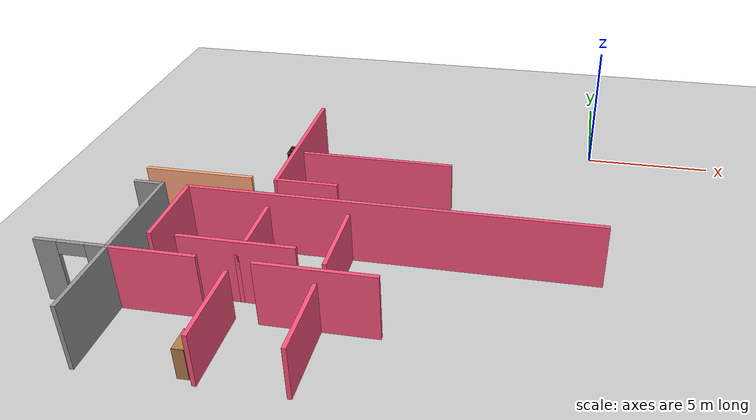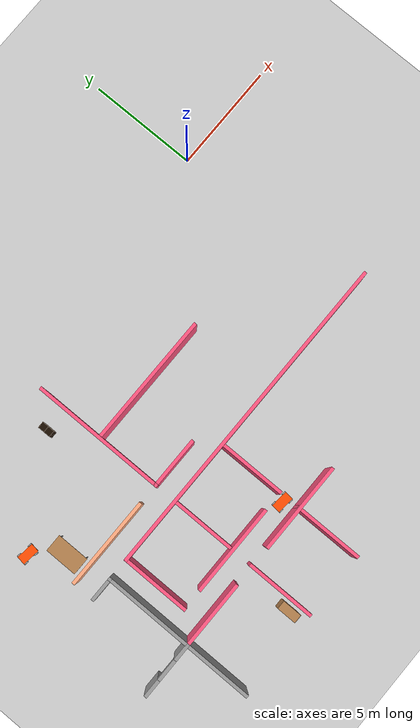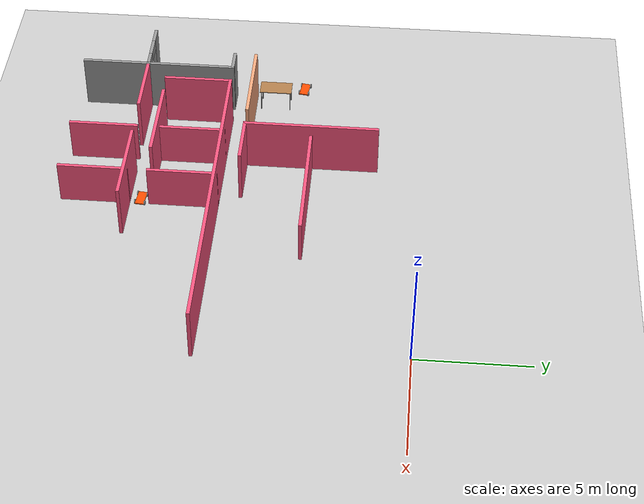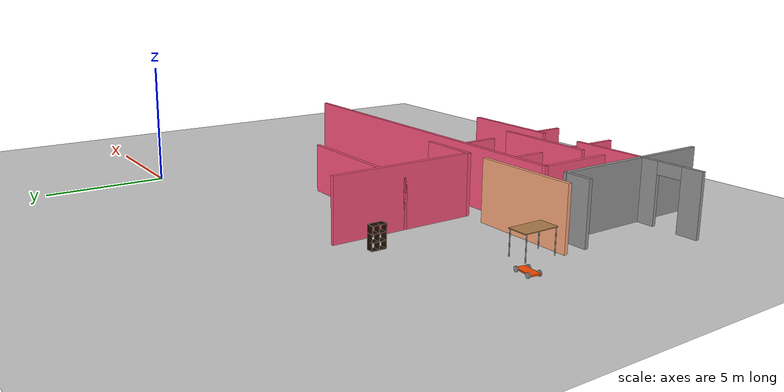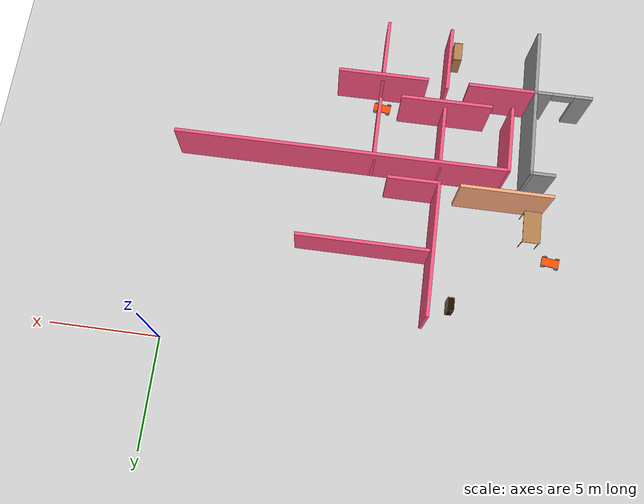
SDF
<sdf version="1.6">
 <world name="default">
  <model name="ground_plane">
   <static>1</static>
   <link name="link">
    <collision name="collision">
     <geometry><plane><normal>0 0 1</normal><size>100 100</size></plane></geometry>
     <surface><friction><ode><mu>100</mu><mu2>50</mu2></ode></friction></surface>
    </collision>
    <visual name="visual">
     <cast_shadows>0</cast_shadows>
     <geometry><plane><normal>0 0 1</normal><size>100 100</size></plane></geometry>
     <material>
      <script><uri>file://media/materials/scripts/gazebo.material</uri><name>Gazebo/Grey</name></script>
     </material>
    </visual>
   </link>
  </model>
  <model name="myWorld">
   <pose>-1.5 0 0 0 -0 0</pose>
   <link name="Wall_100">
    <collision name="Wall_100_Collision">
     <geometry><box><size>15.15 0.15 2.5</size></box></geometry>
     <pose>0 0 1.25 0 -0 0</pose>
    </collision>
    <visual name="Wall_100_Visual">
     <pose>0 0 1.25 0 -0 0</pose>
     <geometry><box><size>15.15 0.15 2.5</size></box></geometry>
     <material>
      <script><uri>file://media/materials/scripts/gazebo.material</uri><name>Gazebo/Grey</name></script>
      <ambient>1 0.333333 0.498039 1</ambient>
     </material>
     <meta><layer>0</layer></meta>
    </visual>
    <pose>-5.5 -9 0 0 -0 0</pose>
   </link>
   <link name="Wall_102">
    <collision name="Wall_102_Collision">
     <geometry><box><size>3.15 0.15 2</size></box></geometry>
     <pose>0 0 1 0 -0 0</pose>
    </collision>
    <visual name="Wall_102_Visual">
     <pose>0 0 1 0 -0 0</pose>
     <geometry><box><size>3.15 0.15 2</size></box></geometry>
     <material>
      <script><uri>file://media/materials/scripts/gazebo.material</uri><name>Gazebo/Grey</name></script>
      <ambient>1 0.333333 0.498039 1</ambient>
     </material>
     <meta><layer>0</layer></meta>
    </visual>
    <pose>-10 -10.5 0 0 0 -1.5708</pose>
   </link>
   <link name="Wall_104">
    <collision name="Wall_104_Collision">
     <geometry><box><size>3.15 0.15 2</size></box></geometry>
     <pose>0 0 1 0 -0 0</pose>
    </collision>
    <visual name="Wall_104_Visual">
     <pose>0 0 1 0 -0 0</pose>
     <geometry><box><size>3.15 0.15 2</size></box></geometry>
     <material>
      <script><uri>file://media/materials/scripts/gazebo.material</uri><name>Gazebo/Grey</name></script>
      <ambient>1 0.333333 0.498039 1</ambient>
     </material>
     <meta><layer>0</layer></meta>
    </visual>
    <pose>-7 -10.5 0 0 0 -1.5708</pose>
   </link>
   <link name="Wall_114">
    <collision name="Wall_114_Collision">
     <geometry><box><size>3.15 0.15 2.5</size></box></geometry>
     <pose>0 0 1.25 0 -0 0</pose>
    </collision>
    <visual name="Wall_114_Visual">
     <pose>0 0 1.25 0 -0 0</pose>
     <geometry><box><size>3.15 0.15 2.5</size></box></geometry>
     <material>
      <script><uri>file://media/materials/scripts/gazebo.material</uri><name>Gazebo/Grey</name></script>
      <ambient>1 0.333333 0.498039 1</ambient>
     </material>
     <meta><layer>0</layer></meta>
    </visual>
    <pose>-13 -10.5 0 0 0 -1.5708</pose>
   </link>
   <link name="Wall_116">
    <collision name="Wall_116_Collision">
     <geometry><box><size>4.15 0.15 2.5</size></box></geometry>
     <pose>0 0 1.25 0 -0 0</pose>
    </collision>
    <visual name="Wall_116_Visual">
     <pose>0 0 1.25 0 -0 0</pose>
     <geometry><box><size>4.15 0.15 2.5</size></box></geometry>
     <material>
      <script><uri>file://media/materials/scripts/gazebo.material</uri><name>Gazebo/Grey</name></script>
      <ambient>1 0.333333 0.498039 1</ambient>
     </material>
     <meta><layer>0</layer></meta>
    </visual>
    <pose>-10 -12 0 0 -0 0</pose>
   </link>
   <link name="Wall_16">
    <collision name="Wall_16_Collision">
     <geometry><box><size>7.15 0.15 2.5</size></box></geometry>
     <pose>0 0 1.25 0 -0 0</pose>
    </collision>
    <visual name="Wall_16_Visual">
     <pose>0 0 1.25 0 -0 0</pose>
     <geometry><box><size>7.15 0.15 2.5</size></box></geometry>
     <material>
      <script><uri>file://media/materials/scripts/gazebo.material</uri><name>Gazebo/Grey</name></script>
      <ambient>1 1 1 1</ambient>
     </material>
     <meta><layer>0</layer></meta>
    </visual>
    <pose>-14 -12.5 0 0 0 -1.5708</pose>
   </link>
   <link name="Wall_18">
    <pose>-15.25 -13 0 0 -0 0</pose>
    <visual name="Wall_18_Visual_0">
     <pose>-0.9125 0 1.25 0 -0 0</pose>
     <geometry><box><size>0.825 0.15 2.5</size></box></geometry>
     <material>
      <script><uri>file://media/materials/scripts/gazebo.material</uri><name>Gazebo/Grey</name></script>
      <ambient>1 1 1 1</ambient>
     </material>
     <meta><layer>0</layer></meta>
    </visual>
    <collision name="Wall_18_Collision_0">
     <geometry><box><size>0.825 0.15 2.5</size></box></geometry>
     <pose>-0.9125 0 1.25 0 -0 0</pose>
    </collision>
    <visual name="Wall_18_Visual_1">
     <pose>0.9125 0 1.25 0 -0 0</pose>
     <geometry><box><size>0.825 0.15 2.5</size></box></geometry>
     <material>
      <script><uri>file://media/materials/scripts/gazebo.material</uri><name>Gazebo/Grey</name></script>
      <ambient>1 1 1 1</ambient>
     </material>
     <meta><layer>0</layer></meta>
    </visual>
    <collision name="Wall_18_Collision_1">
     <geometry><box><size>0.825 0.15 2.5</size></box></geometry>
     <pose>0.9125 0 1.25 0 -0 0</pose>
    </collision>
    <visual name="Wall_18_Visual_2">
     <pose>0 0 2.25 0 -0 0</pose>
     <geometry><box><size>1 0.15 0.5</size></box></geometry>
     <material>
      <script><uri>file://media/materials/scripts/gazebo.material</uri><name>Gazebo/Grey</name></script>
      <ambient>1 1 1 1</ambient>
     </material>
     <meta><layer>0</layer></meta>
    </visual>
    <collision name="Wall_18_Collision_2">
     <geometry><box><size>1 0.15 0.5</size></box></geometry>
     <pose>0 0 2.25 0 -0 0</pose>
    </collision>
   </link>
   <link name="Wall_32">
    <collision name="Wall_32_Collision">
     <geometry><box><size>4.15 0.15 2.5</size></box></geometry>
     <pose>0 0 1.25 0 -0 0</pose>
    </collision>
    <visual name="Wall_32_Visual">
     <pose>0 0 1.25 0 -0 0</pose>
     <geometry><box><size>4.15 0.15 2.5</size></box></geometry>
     <material>
      <script><uri>file://media/materials/scripts/gazebo.material</uri><name>Gazebo/Grey</name></script>
      <ambient>1 0.666667 0.498039 1</ambient>
     </material>
     <meta><layer>0</layer></meta>
    </visual>
    <pose>-13 -8 0 0 -0 0</pose>
   </link>
   <link name="Wall_34">
    <collision name="Wall_34_Collision">
     <geometry><box><size>1.15 0.15 2.5</size></box></geometry>
     <pose>0 0 1.25 0 -0 0</pose>
    </collision>
    <visual name="Wall_34_Visual">
     <pose>0 0 1.25 0 -0 0</pose>
     <geometry><box><size>1.15 0.15 2.5</size></box></geometry>
     <material>
      <script><uri>file://media/materials/scripts/gazebo.material</uri><name>Gazebo/Grey</name></script>
      <ambient>1 1 1 1</ambient>
     </material>
     <meta><layer>0</layer></meta>
    </visual>
    <pose>-14.5 -9 0 0 -0 0</pose>
   </link>
   <link name="Wall_38">
    <collision name="Wall_38_Collision">
     <geometry><box><size>3.15 0.15 2.5</size></box></geometry>
     <pose>0 0 1.25 0 -0 0</pose>
    </collision>
    <visual name="Wall_38_Visual">
     <pose>0 0 1.25 0 -0 0</pose>
     <geometry><box><size>3.15 0.15 2.5</size></box></geometry>
     <material>
      <script><uri>file://media/materials/scripts/gazebo.material</uri><name>Gazebo/Grey</name></script>
      <ambient>1 0.333333 0.498039 1</ambient>
     </material>
     <meta><layer>0</layer></meta>
    </visual>
    <pose>-12.5 -13 0 0 -0 0</pose>
   </link>
   <link name="Wall_46">
    <collision name="Wall_46_Collision">
     <geometry><box><size>6.15 0.15 2.5</size></box></geometry>
     <pose>0 0 1.25 0 -0 0</pose>
    </collision>
    <visual name="Wall_46_Visual">
     <pose>0 0 1.25 0 -0 0</pose>
     <geometry><box><size>6.15 0.15 2.5</size></box></geometry>
     <material>
      <script><uri>file://media/materials/scripts/gazebo.material</uri><name>Gazebo/Grey</name></script>
      <ambient>1 0.333333 0.498039 1</ambient>
     </material>
     <meta><layer>0</layer></meta>
    </visual>
    <pose>-10 -5 0 0 -0 1.5708</pose>
   </link>
   <link name="Wall_50">
    <collision name="Wall_50_Collision">
     <geometry><box><size>3.15 0.15 2</size></box></geometry>
     <pose>0 0 1 0 -0 0</pose>
    </collision>
    <visual name="Wall_50_Visual">
     <pose>0 0 1 0 -0 0</pose>
     <geometry><box><size>3.15 0.15 2</size></box></geometry>
     <material>
      <script><uri>file://media/materials/scripts/gazebo.material</uri><name>Gazebo/Grey</name></script>
      <ambient>1 0.333333 0.498039 1</ambient>
     </material>
     <meta><layer>0</layer></meta>
    </visual>
    <pose>-10 -14.5 0 0 -0 1.5708</pose>
   </link>
   <link name="Wall_52">
    <collision name="Wall_52_Collision">
     <geometry><box><size>3.15 0.15 2</size></box></geometry>
     <pose>0 0 1 0 -0 0</pose>
    </collision>
    <visual name="Wall_52_Visual">
     <pose>0 0 1 0 -0 0</pose>
     <geometry><box><size>3.15 0.15 2</size></box></geometry>
     <material>
      <script><uri>file://media/materials/scripts/gazebo.material</uri><name>Gazebo/Grey</name></script>
      <ambient>1 0.333333 0.498039 1</ambient>
     </material>
     <meta><layer>0</layer></meta>
    </visual>
    <pose>-7 -14.5 0 0 -0 1.5708</pose>
   </link>
   <link name="Wall_59">
    <collision name="Wall_59_Collision">
     <geometry><box><size>4.15 0.15 2.5</size></box></geometry>
     <pose>0 0 1.25 0 -0 0</pose>
    </collision>
    <visual name="Wall_59_Visual">
     <pose>0 0 1.25 0 -0 0</pose>
     <geometry><box><size>4.15 0.15 2.5</size></box></geometry>
     <material>
      <script><uri>file://media/materials/scripts/gazebo.material</uri><name>Gazebo/Grey</name></script>
      <ambient>1 0.333333 0.498039 1</ambient>
     </material>
     <meta><layer>0</layer></meta>
    </visual>
    <pose>-7 -13 0 0 -0 0</pose>
   </link>
   <link name="Wall_72">
    <collision name="Wall_72_Collision">
     <geometry><box><size>6.15 0.15 2</size></box></geometry>
     <pose>0 0 1 0 -0 0</pose>
    </collision>
    <visual name="Wall_72_Visual">
     <pose>0 0 1 0 -0 0</pose>
     <geometry><box><size>6.15 0.15 2</size></box></geometry>
     <material>
      <script><uri>file://media/materials/scripts/gazebo.material</uri><name>Gazebo/Grey</name></script>
      <ambient>1 0.333333 0.498039 1</ambient>
     </material>
     <meta><layer>0</layer></meta>
    </visual>
    <pose>-7 -5 0 0 -0 0</pose>
   </link>
   <link name="Wall_74">
    <collision name="Wall_74_Collision">
     <geometry><box><size>2.4 0.15 2.5</size></box></geometry>
     <pose>0 0 1.25 0 -0 0</pose>
    </collision>
    <visual name="Wall_74_Visual">
     <pose>0 0 1.25 0 -0 0</pose>
     <geometry><box><size>2.4 0.15 2.5</size></box></geometry>
     <material>
      <script><uri>file://media/materials/scripts/gazebo.material</uri><name>Gazebo/Grey</name></script>
      <ambient>1 0.333333 0.498039 1</ambient>
     </material>
     <meta><layer>0</layer></meta>
    </visual>
    <pose>-8.875 -8 0 0 -0 0</pose>
   </link>
   <static>1</static>
  </model>
  <model name="table_1">
   <static>1</static>
   <link name="link">
    <collision name="surface">
     <pose>0 0 1 0 -0 0</pose>
     <geometry><box><size>1.5 0.8 0.03</size></box></geometry>
     <surface><friction><ode><mu>0.6</mu><mu2>0.6</mu2></ode></friction></surface>
    </collision>
    <visual name="visual1">
     <pose>0 0 1 0 -0 0</pose>
     <geometry><box><size>1.5 0.8 0.03</size></box></geometry>
     <material>
      <script><uri>file://media/materials/scripts/gazebo.material</uri><name>Gazebo/Wood</name></script>
     </material>
    </visual>
    <collision name="front_left_leg">
     <pose>0.68 0.38 0.5 0 -0 0</pose>
     <geometry><cylinder><radius>0.02</radius><length>1</length></cylinder></geometry>
    </collision>
    <visual name="front_left_leg">
     <pose>0.68 0.38 0.5 0 -0 0</pose>
     <geometry><cylinder><radius>0.02</radius><length>1</length></cylinder></geometry>
     <material>
      <script><uri>file://media/materials/scripts/gazebo.material</uri><name>Gazebo/Grey</name></script>
     </material>
    </visual>
    <collision name="front_right_leg">
     <pose>0.68 -0.38 0.5 0 -0 0</pose>
     <geometry><cylinder><radius>0.02</radius><length>1</length></cylinder></geometry>
    </collision>
    <visual name="front_right_leg">
     <pose>0.68 -0.38 0.5 0 -0 0</pose>
     <geometry><cylinder><radius>0.02</radius><length>1</length></cylinder></geometry>
     <material>
      <script><uri>file://media/materials/scripts/gazebo.material</uri><name>Gazebo/Grey</name></script>
     </material>
    </visual>
    <collision name="back_right_leg">
     <pose>-0.68 -0.38 0.5 0 -0 0</pose>
     <geometry><cylinder><radius>0.02</radius><length>1</length></cylinder></geometry>
    </collision>
    <visual name="back_right_leg">
     <pose>-0.68 -0.38 0.5 0 -0 0</pose>
     <geometry><cylinder><radius>0.02</radius><length>1</length></cylinder></geometry>
     <material>
      <script><uri>file://media/materials/scripts/gazebo.material</uri><name>Gazebo/Grey</name></script>
     </material>
    </visual>
    <collision name="back_left_leg">
     <pose>-0.68 0.38 0.5 0 -0 0</pose>
     <geometry><cylinder><radius>0.02</radius><length>1</length></cylinder></geometry>
    </collision>
    <visual name="back_left_leg">
     <pose>-0.68 0.38 0.5 0 -0 0</pose>
     <geometry><cylinder><radius>0.02</radius><length>1</length></cylinder></geometry>
     <material>
      <script><uri>file://media/materials/scripts/gazebo.material</uri><name>Gazebo/Grey</name></script>
     </material>
    </visual>
   </link>
   <pose>-16 -7 0 0 -0 1.5708</pose>
  </model>
  <model name="6_Cube_StorageE_3_clone_0">
   <link name="Wall_0">
    <pose>0 0 0.01 0 -0 0</pose>
    <inertial>
     <mass>1.6201</mass>
     <inertia><ixx>0.0119</ixx><iyy>0.0631</iyy><izz>0.0513</izz><ixy>0</ixy><ixz>0</ixz><iyz>0</iyz></inertia>
    </inertial>
    <collision name="Wall_0_Collision"><geometry><box><size>0.616 0.296 0.02</size></box></geometry></collision>
    <visual name="Wall_0_Visual">
     <geometry><box><size>0.616 0.296 0.02</size></box></geometry>
     <material>
      <script><uri>file://media/materials/scripts/gazebo.material</uri><name>Gazebo/Grey</name></script>
      <ambient>0.105882 0.0509804 0 1</ambient>
     </material>
    </visual>
   </link>
   <joint name="0_2" type="fixed">
    <pose>-0.308 0 0 0 -0 0</pose>
    <parent>Wall_2</parent>
    <child>Wall_0</child>
    <axis>
     <xyz>1 0 0</xyz>
     <use_parent_model_frame>0</use_parent_model_frame>
     <limit><lower>-1e+16</lower><upper>1e+16</upper></limit>
    </axis>
   </joint>
   <joint name="0_12" type="fixed">
    <parent>Wall_12</parent>
    <child>Wall_0</child>
    <axis>
     <xyz>0 0 1</xyz>
     <use_parent_model_frame>0</use_parent_model_frame>
     <limit><lower>-1e+16</lower><upper>1e+16</upper></limit>
    </axis>
   </joint>
   <joint name="0_4" type="fixed">
    <pose>0.308 0 0 0 -0 0</pose>
    <parent>Wall_4</parent>
    <child>Wall_0</child>
    <axis>
     <xyz>1 0 0</xyz>
     <use_parent_model_frame>0</use_parent_model_frame>
     <limit><lower>-1e+16</lower><upper>1e+16</upper></limit>
    </axis>
   </joint>
   <link name="Wall_10">
    <pose>0 0 0.61 0 -0 0</pose>
    <inertial>
     <mass>1.6201</mass>
     <inertia><ixx>0.0119</ixx><iyy>0.0631</iyy><izz>0.0513</izz><ixy>0</ixy><ixz>0</ixz><iyz>0</iyz></inertia>
    </inertial>
    <collision name="Wall_10_Collision"><geometry><box><size>0.616 0.296 0.02</size></box></geometry></collision>
    <visual name="Wall_10_Visual">
     <geometry><box><size>0.616 0.296 0.02</size></box></geometry>
     <material>
      <script><uri>file://media/materials/scripts/gazebo.material</uri><name>Gazebo/Grey</name></script>
      <ambient>0.105882 0.0509804 0 1</ambient>
     </material>
    </visual>
   </link>
   <joint name="10_2" type="fixed">
    <pose>-0.308 0 0 0 -0 0</pose>
    <parent>Wall_2</parent>
    <child>Wall_10</child>
    <axis>
     <xyz>1 0 0</xyz>
     <use_parent_model_frame>0</use_parent_model_frame>
     <limit><lower>-1e+16</lower><upper>1e+16</upper></limit>
    </axis>
   </joint>
   <joint name="10_12" type="fixed">
    <parent>Wall_12</parent>
    <child>Wall_10</child>
    <axis>
     <xyz>0 0 1</xyz>
     <use_parent_model_frame>0</use_parent_model_frame>
     <limit><lower>-1e+16</lower><upper>1e+16</upper></limit>
    </axis>
   </joint>
   <joint name="10_4" type="fixed">
    <pose>0.308 0 0 0 -0 0</pose>
    <parent>Wall_4</parent>
    <child>Wall_10</child>
    <axis>
     <xyz>1 0 0</xyz>
     <use_parent_model_frame>0</use_parent_model_frame>
     <limit><lower>-1e+16</lower><upper>1e+16</upper></limit>
    </axis>
   </joint>
   <link name="Wall_12">
    <pose>0 0 0.4575 0 -0 0</pose>
    <inertial>
     <mass>2.4065</mass>
     <inertia><ixx>0.0177</ixx><iyy>0.1855</iyy><izz>0.168</izz><ixy>0</ixy><ixz>0</ixz><iyz>0</iyz></inertia>
    </inertial>
    <collision name="Wall_12_Collision"><geometry><box><size>0.02 0.296 0.915</size></box></geometry></collision>
    <visual name="Wall_12_Visual">
     <geometry><box><size>0.02 0.296 0.915</size></box></geometry>
     <material>
      <script><uri>file://media/materials/scripts/gazebo.material</uri><name>Gazebo/Grey</name></script>
      <ambient>0.105882 0.0509804 0 1</ambient>
     </material>
    </visual>
   </link>
   <link name="Wall_2">
    <pose>-0.298 0 0.4575 0 -0 0</pose>
    <inertial>
     <mass>2.4065</mass>
     <inertia><ixx>0.0177</ixx><iyy>0.1855</iyy><izz>0.168</izz><ixy>0</ixy><ixz>0</ixz><iyz>0</iyz></inertia>
    </inertial>
    <collision name="Wall_2_Collision"><geometry><box><size>0.02 0.296 0.915</size></box></geometry></collision>
    <visual name="Wall_2_Visual">
     <geometry><box><size>0.02 0.296 0.915</size></box></geometry>
     <material>
      <script><uri>file://media/materials/scripts/gazebo.material</uri><name>Gazebo/Grey</name></script>
      <ambient>0.105882 0.0509804 0 1</ambient>
     </material>
    </visual>
   </link>
   <link name="Wall_4">
    <pose>0.298 0 0.4575 0 -0 0</pose>
    <inertial>
     <mass>2.4065</mass>
     <inertia><ixx>0.0177</ixx><iyy>0.1855</iyy><izz>0.168</izz><ixy>0</ixy><ixz>0</ixz><iyz>0</iyz></inertia>
    </inertial>
    <collision name="Wall_4_Collision"><geometry><box><size>0.02 0.296 0.915</size></box></geometry></collision>
    <visual name="Wall_4_Visual">
     <geometry><box><size>0.02 0.296 0.915</size></box></geometry>
     <material>
      <script><uri>file://media/materials/scripts/gazebo.material</uri><name>Gazebo/Grey</name></script>
      <ambient>0.105882 0.0509804 0 1</ambient>
     </material>
    </visual>
   </link>
   <link name="Wall_6">
    <pose>0 0 0.905 0 -0 0</pose>
    <inertial>
     <mass>1.6201</mass>
     <inertia><ixx>0.0119</ixx><iyy>0.0631</iyy><izz>0.0513</izz><ixy>0</ixy><ixz>0</ixz><iyz>0</iyz></inertia>
    </inertial>
    <collision name="Wall_6_Collision"><geometry><box><size>0.616 0.296 0.02</size></box></geometry></collision>
    <visual name="Wall_6_Visual">
     <geometry><box><size>0.616 0.296 0.02</size></box></geometry>
     <material>
      <script><uri>file://media/materials/scripts/gazebo.material</uri><name>Gazebo/Grey</name></script>
      <ambient>0.105882 0.0509804 0 1</ambient>
     </material>
    </visual>
   </link>
   <joint name="6_2" type="fixed">
    <pose>-0.308 0 0 0 -0 0</pose>
    <parent>Wall_2</parent>
    <child>Wall_6</child>
    <axis>
     <xyz>2 0 0</xyz>
     <use_parent_model_frame>0</use_parent_model_frame>
     <limit><lower>-1e+16</lower><upper>1e+16</upper></limit>
    </axis>
   </joint>
   <joint name="6_12" type="fixed">
    <parent>Wall_12</parent>
    <child>Wall_6</child>
    <axis>
     <xyz>0 0 1</xyz>
     <use_parent_model_frame>0</use_parent_model_frame>
     <limit><lower>-1e+16</lower><upper>1e+16</upper></limit>
    </axis>
   </joint>
   <joint name="6_4" type="fixed">
    <pose>0.308 0 0 0 -0 0</pose>
    <parent>Wall_4</parent>
    <child>Wall_6</child>
    <axis>
     <xyz>1 0 0</xyz>
     <use_parent_model_frame>0</use_parent_model_frame>
     <limit><lower>-1e+16</lower><upper>1e+16</upper></limit>
    </axis>
   </joint>
   <link name="Wall_8">
    <pose>0 0 0.305 0 -0 0</pose>
    <inertial>
     <mass>1.6201</mass>
     <inertia><ixx>0.0119</ixx><iyy>0.0631</iyy><izz>0.0513</izz><ixy>0</ixy><ixz>0</ixz><iyz>0</iyz></inertia>
    </inertial>
    <collision name="Wall_8_Collision"><geometry><box><size>0.616 0.296 0.02</size></box></geometry></collision>
    <visual name="Wall_8_Visual">
     <geometry><box><size>0.616 0.296 0.02</size></box></geometry>
     <material>
      <script><uri>file://media/materials/scripts/gazebo.material</uri><name>Gazebo/Grey</name></script>
      <ambient>0.105882 0.0509804 0 1</ambient>
     </material>
    </visual>
   </link>
   <joint name="8_2" type="fixed">
    <pose>-0.308 0 0 0 -0 0</pose>
    <parent>Wall_2</parent>
    <child>Wall_8</child>
    <axis>
     <xyz>1 0 0</xyz>
     <use_parent_model_frame>0</use_parent_model_frame>
     <limit><lower>-1e+16</lower><upper>1e+16</upper></limit>
    </axis>
   </joint>
   <joint name="8_12" type="fixed">
    <parent>Wall_12</parent>
    <child>Wall_8</child>
    <axis>
     <xyz>0 0 1</xyz>
     <use_parent_model_frame>0</use_parent_model_frame>
     <limit><lower>-1e+16</lower><upper>1e+16</upper></limit>
    </axis>
   </joint>
   <joint name="8_4" type="fixed">
    <pose>0.308 0 0 0 -0 0</pose>
    <parent>Wall_4</parent>
    <child>Wall_8</child>
    <axis>
     <xyz>1 0 0</xyz>
     <use_parent_model_frame>0</use_parent_model_frame>
     <limit><lower>-1e+16</lower><upper>1e+16</upper></limit>
    </axis>
   </joint>
   <static>1</static>
   <pose>-12.6642 -3 0 0 -0 1.5708</pose>
  </model>
  <model name="bookshelf_2">
   <static>1</static>
   <link name="link">
    <inertial><mass>1</mass></inertial>
    <collision name="back">
     <pose>0 0.005 0.6 0 -0 0</pose>
     <geometry><box><size>0.9 0.01 1.2</size></box></geometry>
    </collision>
    <visual name="visual1">
     <pose>0 0.005 0.6 0 -0 0</pose>
     <geometry><box><size>0.9 0.01 1.2</size></box></geometry>
     <material>
      <script><uri>file://media/materials/scripts/gazebo.material</uri><name>Gazebo/Wood</name></script>
     </material>
    </visual>
    <collision name="left_side">
     <pose>0.45 -0.195 0.6 0 -0 0</pose>
     <geometry><box><size>0.02 0.4 1.2</size></box></geometry>
    </collision>
    <visual name="visual2">
     <pose>0.45 -0.195 0.6 0 -0 0</pose>
     <geometry><box><size>0.02 0.4 1.2</size></box></geometry>
     <material>
      <script><uri>file://media/materials/scripts/gazebo.material</uri><name>Gazebo/Wood</name></script>
     </material>
    </visual>
    <collision name="right_side">
     <pose>-0.45 -0.195 0.6 0 -0 0</pose>
     <geometry><box><size>0.02 0.4 1.2</size></box></geometry>
    </collision>
    <visual name="visual3">
     <pose>-0.45 -0.195 0.6 0 -0 0</pose>
     <geometry><box><size>0.02 0.4 1.2</size></box></geometry>
     <material>
      <script><uri>file://media/materials/scripts/gazebo.material</uri><name>Gazebo/Wood</name></script>
     </material>
    </visual>
    <collision name="bottom">
     <pose>0 -0.195 0.03 0 -0 0</pose>
     <geometry><box><size>0.88 0.4 0.06</size></box></geometry>
    </collision>
    <visual name="visual4">
     <pose>0 -0.195 0.03 0 -0 0</pose>
     <geometry><box><size>0.88 0.4 0.06</size></box></geometry>
     <material>
      <script><uri>file://media/materials/scripts/gazebo.material</uri><name>Gazebo/Wood</name></script>
     </material>
    </visual>
    <collision name="top">
     <pose>0 -0.195 1.19 0 -0 0</pose>
     <geometry><box><size>0.88 0.4 0.02</size></box></geometry>
    </collision>
    <visual name="visual5">
     <pose>0 -0.195 1.19 0 -0 0</pose>
     <geometry><box><size>0.88 0.4 0.02</size></box></geometry>
     <material>
      <script><uri>file://media/materials/scripts/gazebo.material</uri><name>Gazebo/Wood</name></script>
     </material>
    </visual>
    <collision name="low_shelf">
     <pose>0 -0.195 0.43 0 -0 0</pose>
     <geometry><box><size>0.88 0.4 0.02</size></box></geometry>
    </collision>
    <visual name="visual6">
     <pose>0 -0.195 0.43 0 -0 0</pose>
     <geometry><box><size>0.88 0.4 0.02</size></box></geometry>
     <material>
      <script><uri>file://media/materials/scripts/gazebo.material</uri><name>Gazebo/Wood</name></script>
     </material>
    </visual>
    <collision name="high_shelf">
     <pose>0 -0.195 0.8 0 -0 0</pose>
     <geometry><box><size>0.88 0.4 0.02</size></box></geometry>
    </collision>
    <visual name="visual7">
     <pose>0 -0.195 0.8 0 -0 0</pose>
     <geometry><box><size>0.88 0.4 0.02</size></box></geometry>
     <material>
      <script><uri>file://media/materials/scripts/gazebo.material</uri><name>Gazebo/Wood</name></script>
     </material>
    </visual>
   </link>
   <pose>-11.75 -15.4 0 0 0 -1.5708</pose>
  </model>
  <model name="myRobot">
   <link name="link_0">
    <pose>0.008 1e-06 0 0 -0 0</pose>
    <inertial>
     <mass>1</mass>
     <inertia>
      <ixx>0.166667</ixx>
      <ixy>0</ixy>
      <ixz>0</ixz>
      <iyy>0.166667</iyy>
      <iyz>0</iyz>
      <izz>0.166667</izz>
     </inertia>
    </inertial>
    <visual name="visual">
     <geometry><box><size>0.8 0.4 0.05</size></box></geometry>
     <material>
      <lighting>1</lighting>
      <script><uri>file://media/materials/scripts/gazebo.material</uri><name>Gazebo/Grey</name></script>
      <shader type="pixel"><normal_map>__default__</normal_map></shader>
      <ambient>1 0.3 0 1</ambient>
      <diffuse>0.7 0.7 0.7 1</diffuse>
      <specular>0.01 0.01 0.01 1</specular>
      <emissive>0 0 0 1</emissive>
     </material>
    </visual>
    <collision name="collision">
     <geometry><box><size>0.8 0.4 0.05</size></box></geometry>
     <surface>
      <friction>
       <ode><mu>1</mu><mu2>1</mu2><fdir1>0 0 0</fdir1><slip1>0</slip1><slip2>0</slip2></ode>
       <torsional>
        <coefficient>1</coefficient>
        <patch_radius>0</patch_radius>
        <surface_radius>0</surface_radius>
        <use_patch_radius>1</use_patch_radius>
        <ode><slip>0</slip></ode>
       </torsional>
      </friction>
      <bounce><restitution_coefficient>0</restitution_coefficient><threshold>1e+06</threshold></bounce>
      <contact>
       <collide_without_contact>0</collide_without_contact>
       <collide_without_contact_bitmask>1</collide_without_contact_bitmask>
       <collide_bitmask>1</collide_bitmask>
       <ode>
        <soft_cfm>0</soft_cfm>
        <soft_erp>0.2</soft_erp>
        <kp>1e+13</kp>
        <kd>1</kd>
        <max_vel>0.01</max_vel>
        <min_depth>0</min_depth>
       </ode>
       <bullet>
        <split_impulse>1</split_impulse>
        <split_impulse_penetration_threshold>-0.01</split_impulse_penetration_threshold>
        <soft_cfm>0</soft_cfm>
        <soft_erp>0.2</soft_erp>
        <kp>1e+13</kp>
        <kd>1</kd>
       </bullet>
      </contact>
     </surface>
    </collision>
   </link>
   <link name="link_1">
    <pose>0.268 -0.225013 0 1.5707 -0 0</pose>
    <inertial>
     <mass>1</mass>
     <inertia><ixx>0.145833</ixx><ixy>0</ixy><ixz>0</ixz><iyy>0.145833</iyy><iyz>0</iyz><izz>0.125</izz></inertia>
    </inertial>
    <visual name="visual">
     <geometry><cylinder><radius>0.1</radius><length>0.05</length></cylinder></geometry>
     <material>
      <lighting>1</lighting>
      <script><uri>file://media/materials/scripts/gazebo.material</uri><name>Gazebo/Grey</name></script>
      <shader type="pixel"><normal_map>__default__</normal_map></shader>
      <ambient>1 1 1 1</ambient>
      <diffuse>0.7 0.7 0.7 1</diffuse>
      <specular>0.01 0.01 0.01 1</specular>
      <emissive>0 0 0 1</emissive>
     </material>
    </visual>
    <collision name="collision">
     <geometry><cylinder><radius>0.1</radius><length>0.05</length></cylinder></geometry>
     <surface>
      <friction>
       <ode><mu>1</mu><mu2>1</mu2><fdir1>0 0 0</fdir1><slip1>0</slip1><slip2>0</slip2></ode>
       <torsional>
        <coefficient>1</coefficient>
        <patch_radius>0</patch_radius>
        <surface_radius>0</surface_radius>
        <use_patch_radius>1</use_patch_radius>
        <ode><slip>0</slip></ode>
       </torsional>
      </friction>
      <bounce><restitution_coefficient>0</restitution_coefficient><threshold>1e+06</threshold></bounce>
      <contact>
       <collide_without_contact>0</collide_without_contact>
       <collide_without_contact_bitmask>1</collide_without_contact_bitmask>
       <collide_bitmask>1</collide_bitmask>
       <ode>
        <soft_cfm>0</soft_cfm>
        <soft_erp>0.2</soft_erp>
        <kp>1e+13</kp>
        <kd>1</kd>
        <max_vel>0.01</max_vel>
        <min_depth>0</min_depth>
       </ode>
       <bullet>
        <split_impulse>1</split_impulse>
        <split_impulse_penetration_threshold>-0.01</split_impulse_penetration_threshold>
        <soft_cfm>0</soft_cfm>
        <soft_erp>0.2</soft_erp>
        <kp>1e+13</kp>
        <kd>1</kd>
       </bullet>
      </contact>
     </surface>
    </collision>
   </link>
   <link name="link_1_clone">
    <pose>-0.292 -0.225009 0 1.5707 -0 0</pose>
    <inertial>
     <mass>1</mass>
     <inertia><ixx>0.145833</ixx><ixy>0</ixy><ixz>0</ixz><iyy>0.145833</iyy><iyz>0</iyz><izz>0.125</izz></inertia>
    </inertial>
    <visual name="visual">
     <geometry><cylinder><radius>0.1</radius><length>0.05</length></cylinder></geometry>
     <material>
      <lighting>1</lighting>
      <script><uri>file://media/materials/scripts/gazebo.material</uri><name>Gazebo/Grey</name></script>
      <shader type="pixel"><normal_map>__default__</normal_map></shader>
      <ambient>1 1 1 1</ambient>
      <diffuse>0.7 0.7 0.7 1</diffuse>
      <specular>0.01 0.01 0.01 1</specular>
      <emissive>0 0 0 1</emissive>
     </material>
    </visual>
    <collision name="collision">
     <geometry><cylinder><radius>0.1</radius><length>0.05</length></cylinder></geometry>
     <surface>
      <friction>
       <ode><mu>1</mu><mu2>1</mu2><fdir1>0 0 0</fdir1><slip1>0</slip1><slip2>0</slip2></ode>
       <torsional>
        <coefficient>1</coefficient>
        <patch_radius>0</patch_radius>
        <surface_radius>0</surface_radius>
        <use_patch_radius>1</use_patch_radius>
        <ode><slip>0</slip></ode>
       </torsional>
      </friction>
      <bounce><restitution_coefficient>0</restitution_coefficient><threshold>1e+06</threshold></bounce>
      <contact>
       <collide_without_contact>0</collide_without_contact>
       <collide_without_contact_bitmask>1</collide_without_contact_bitmask>
       <collide_bitmask>1</collide_bitmask>
       <ode>
        <soft_cfm>0</soft_cfm>
        <soft_erp>0.2</soft_erp>
        <kp>1e+13</kp>
        <kd>1</kd>
        <max_vel>0.01</max_vel>
        <min_depth>0</min_depth>
       </ode>
       <bullet>
        <split_impulse>1</split_impulse>
        <split_impulse_penetration_threshold>-0.01</split_impulse_penetration_threshold>
        <soft_cfm>0</soft_cfm>
        <soft_erp>0.2</soft_erp>
        <kp>1e+13</kp>
        <kd>1</kd>
       </bullet>
      </contact>
     </surface>
    </collision>
   </link>
   <link name="link_1_clone_0">
    <pose>0.308 0.22501 0 1.5707 -0 0</pose>
    <inertial>
     <mass>1</mass>
     <inertia><ixx>0.145833</ixx><ixy>0</ixy><ixz>0</ixz><iyy>0.145833</iyy><iyz>0</iyz><izz>0.125</izz></inertia>
    </inertial>
    <visual name="visual">
     <geometry><cylinder><radius>0.1</radius><length>0.05</length></cylinder></geometry>
     <material>
      <lighting>1</lighting>
      <script><uri>file://media/materials/scripts/gazebo.material</uri><name>Gazebo/Grey</name></script>
      <shader type="pixel"><normal_map>__default__</normal_map></shader>
      <ambient>1 1 1 1</ambient>
      <diffuse>0.7 0.7 0.7 1</diffuse>
      <specular>0.01 0.01 0.01 1</specular>
      <emissive>0 0 0 1</emissive>
     </material>
    </visual>
    <collision name="collision">
     <geometry><cylinder><radius>0.1</radius><length>0.05</length></cylinder></geometry>
     <surface>
      <friction>
       <ode><mu>1</mu><mu2>1</mu2><fdir1>0 0 0</fdir1><slip1>0</slip1><slip2>0</slip2></ode>
       <torsional>
        <coefficient>1</coefficient>
        <patch_radius>0</patch_radius>
        <surface_radius>0</surface_radius>
        <use_patch_radius>1</use_patch_radius>
        <ode><slip>0</slip></ode>
       </torsional>
      </friction>
      <bounce><restitution_coefficient>0</restitution_coefficient><threshold>1e+06</threshold></bounce>
      <contact>
       <collide_without_contact>0</collide_without_contact>
       <collide_without_contact_bitmask>1</collide_without_contact_bitmask>
       <collide_bitmask>1</collide_bitmask>
       <ode>
        <soft_cfm>0</soft_cfm>
        <soft_erp>0.2</soft_erp>
        <kp>1e+13</kp>
        <kd>1</kd>
        <max_vel>0.01</max_vel>
        <min_depth>0</min_depth>
       </ode>
       <bullet>
        <split_impulse>1</split_impulse>
        <split_impulse_penetration_threshold>-0.01</split_impulse_penetration_threshold>
        <soft_cfm>0</soft_cfm>
        <soft_erp>0.2</soft_erp>
        <kp>1e+13</kp>
        <kd>1</kd>
       </bullet>
      </contact>
     </surface>
    </collision>
   </link>
   <link name="link_1_clone_1">
    <pose>-0.292 0.22501 0 1.5707 -0 0</pose>
    <inertial>
     <mass>1</mass>
     <inertia><ixx>0.145833</ixx><ixy>0</ixy><ixz>0</ixz><iyy>0.145833</iyy><iyz>0</iyz><izz>0.125</izz></inertia>
    </inertial>
    <visual name="visual">
     <geometry><cylinder><radius>0.1</radius><length>0.05</length></cylinder></geometry>
     <material>
      <lighting>1</lighting>
      <script><uri>file://media/materials/scripts/gazebo.material</uri><name>Gazebo/Grey</name></script>
      <shader type="pixel"><normal_map>__default__</normal_map></shader>
      <ambient>1 1 1 1</ambient>
      <diffuse>0.7 0.7 0.7 1</diffuse>
      <specular>0.01 0.01 0.01 1</specular>
      <emissive>0 0 0 1</emissive>
     </material>
    </visual>
    <collision name="collision">
     <geometry><cylinder><radius>0.1</radius><length>0.05</length></cylinder></geometry>
     <surface>
      <friction>
       <ode><mu>1</mu><mu2>1</mu2><fdir1>0 0 0</fdir1><slip1>0</slip1><slip2>0</slip2></ode>
       <torsional>
        <coefficient>1</coefficient>
        <patch_radius>0</patch_radius>
        <surface_radius>0</surface_radius>
        <use_patch_radius>1</use_patch_radius>
        <ode><slip>0</slip></ode>
       </torsional>
      </friction>
      <bounce><restitution_coefficient>0</restitution_coefficient><threshold>1e+06</threshold></bounce>
      <contact>
       <collide_without_contact>0</collide_without_contact>
       <collide_without_contact_bitmask>1</collide_without_contact_bitmask>
       <collide_bitmask>1</collide_bitmask>
       <ode>
        <soft_cfm>0</soft_cfm>
        <soft_erp>0.2</soft_erp>
        <kp>1e+13</kp>
        <kd>1</kd>
        <max_vel>0.01</max_vel>
        <min_depth>0</min_depth>
       </ode>
       <bullet>
        <split_impulse>1</split_impulse>
        <split_impulse_penetration_threshold>-0.01</split_impulse_penetration_threshold>
        <soft_cfm>0</soft_cfm>
        <soft_erp>0.2</soft_erp>
        <kp>1e+13</kp>
        <kd>1</kd>
       </bullet>
      </contact>
     </surface>
    </collision>
   </link>
   <joint name="link_0_JOINT_1" type="revolute">
    <parent>link_0</parent>
    <child>link_1</child>
    <axis>
     <xyz>0 0 1</xyz>
     <use_parent_model_frame>0</use_parent_model_frame>
     <limit>
      <lower>-1.79769e+308</lower>
      <upper>1.79769e+308</upper>
      <effort>-1</effort>
      <velocity>-1</velocity>
     </limit>
     <dynamics>
      <spring_reference>0</spring_reference>
      <spring_stiffness>0</spring_stiffness>
      <damping>0</damping>
     </dynamics>
    </axis>
    <physics>
     <ode><limit><cfm>0</cfm><erp>0.2</erp></limit><suspension><cfm>0</cfm><erp>0.2</erp></suspension></ode>
    </physics>
   </joint>
   <joint name="link_0_JOINT_2" type="revolute">
    <parent>link_0</parent>
    <child>link_1_clone</child>
    <axis>
     <xyz>0 0 1</xyz>
     <use_parent_model_frame>0</use_parent_model_frame>
     <limit>
      <lower>-1.79769e+308</lower>
      <upper>1.79769e+308</upper>
      <effort>-1</effort>
      <velocity>-1</velocity>
     </limit>
     <dynamics>
      <spring_reference>0</spring_reference>
      <spring_stiffness>0</spring_stiffness>
      <damping>0</damping>
     </dynamics>
    </axis>
    <physics>
     <ode><limit><cfm>0</cfm><erp>0.2</erp></limit><suspension><cfm>0</cfm><erp>0.2</erp></suspension></ode>
    </physics>
   </joint>
   <joint name="link_0_JOINT_3" type="revolute">
    <parent>link_0</parent>
    <child>link_1_clone_0</child>
    <axis>
     <xyz>0 0 1</xyz>
     <use_parent_model_frame>0</use_parent_model_frame>
     <limit>
      <lower>-1.79769e+308</lower>
      <upper>1.79769e+308</upper>
      <effort>-1</effort>
      <velocity>-1</velocity>
     </limit>
     <dynamics>
      <spring_reference>0</spring_reference>
      <spring_stiffness>0</spring_stiffness>
      <damping>0</damping>
     </dynamics>
    </axis>
    <physics>
     <ode><limit><cfm>0</cfm><erp>0.2</erp></limit><suspension><cfm>0</cfm><erp>0.2</erp></suspension></ode>
    </physics>
   </joint>
   <joint name="link_0_JOINT_4" type="revolute">
    <parent>link_0</parent>
    <child>link_1_clone_1</child>
    <axis>
     <xyz>0 0 1</xyz>
     <use_parent_model_frame>0</use_parent_model_frame>
     <limit>
      <lower>-1.79769e+308</lower>
      <upper>1.79769e+308</upper>
      <effort>-1</effort>
      <velocity>-1</velocity>
     </limit>
     <dynamics>
      <spring_reference>0</spring_reference>
      <spring_stiffness>0</spring_stiffness>
      <damping>0</damping>
     </dynamics>
    </axis>
    <physics>
     <ode><limit><cfm>0</cfm><erp>0.2</erp></limit><suspension><cfm>0</cfm><erp>0.2</erp></suspension></ode>
    </physics>
   </joint>
   <static>0</static>
   <pose>-17.114 -5.7042 0.110002 0 0 -0.125853</pose>
  </model>
  <model name="myRobot_0">
   <link name="link_0">
    <pose>0.008 1e-06 0 0 -0 0</pose>
    <inertial>
     <mass>1</mass>
     <inertia>
      <ixx>0.166667</ixx>
      <ixy>0</ixy>
      <ixz>0</ixz>
      <iyy>0.166667</iyy>
      <iyz>0</iyz>
      <izz>0.166667</izz>
     </inertia>
    </inertial>
    <visual name="visual">
     <geometry><box><size>0.8 0.4 0.05</size></box></geometry>
     <material>
      <lighting>1</lighting>
      <script><uri>file://media/materials/scripts/gazebo.material</uri><name>Gazebo/Grey</name></script>
      <shader type="pixel"><normal_map>__default__</normal_map></shader>
      <ambient>1 0.3 0 1</ambient>
      <diffuse>0.7 0.7 0.7 1</diffuse>
      <specular>0.01 0.01 0.01 1</specular>
      <emissive>0 0 0 1</emissive>
     </material>
    </visual>
    <collision name="collision">
     <geometry><box><size>0.8 0.4 0.05</size></box></geometry>
     <surface>
      <friction>
       <ode><mu>1</mu><mu2>1</mu2><fdir1>0 0 0</fdir1><slip1>0</slip1><slip2>0</slip2></ode>
       <torsional>
        <coefficient>1</coefficient>
        <patch_radius>0</patch_radius>
        <surface_radius>0</surface_radius>
        <use_patch_radius>1</use_patch_radius>
        <ode><slip>0</slip></ode>
       </torsional>
      </friction>
      <bounce><restitution_coefficient>0</restitution_coefficient><threshold>1e+06</threshold></bounce>
      <contact>
       <collide_without_contact>0</collide_without_contact>
       <collide_without_contact_bitmask>1</collide_without_contact_bitmask>
       <collide_bitmask>1</collide_bitmask>
       <ode>
        <soft_cfm>0</soft_cfm>
        <soft_erp>0.2</soft_erp>
        <kp>1e+13</kp>
        <kd>1</kd>
        <max_vel>0.01</max_vel>
        <min_depth>0</min_depth>
       </ode>
       <bullet>
        <split_impulse>1</split_impulse>
        <split_impulse_penetration_threshold>-0.01</split_impulse_penetration_threshold>
        <soft_cfm>0</soft_cfm>
        <soft_erp>0.2</soft_erp>
        <kp>1e+13</kp>
        <kd>1</kd>
       </bullet>
      </contact>
     </surface>
    </collision>
   </link>
   <link name="link_1">
    <pose>0.268 -0.225013 0 1.5707 -0 0</pose>
    <inertial>
     <mass>1</mass>
     <inertia><ixx>0.145833</ixx><ixy>0</ixy><ixz>0</ixz><iyy>0.145833</iyy><iyz>0</iyz><izz>0.125</izz></inertia>
    </inertial>
    <visual name="visual">
     <geometry><cylinder><radius>0.1</radius><length>0.05</length></cylinder></geometry>
     <material>
      <lighting>1</lighting>
      <script><uri>file://media/materials/scripts/gazebo.material</uri><name>Gazebo/Grey</name></script>
      <shader type="pixel"><normal_map>__default__</normal_map></shader>
      <ambient>1 1 1 1</ambient>
      <diffuse>0.7 0.7 0.7 1</diffuse>
      <specular>0.01 0.01 0.01 1</specular>
      <emissive>0 0 0 1</emissive>
     </material>
    </visual>
    <collision name="collision">
     <geometry><cylinder><radius>0.1</radius><length>0.05</length></cylinder></geometry>
     <surface>
      <friction>
       <ode><mu>1</mu><mu2>1</mu2><fdir1>0 0 0</fdir1><slip1>0</slip1><slip2>0</slip2></ode>
       <torsional>
        <coefficient>1</coefficient>
        <patch_radius>0</patch_radius>
        <surface_radius>0</surface_radius>
        <use_patch_radius>1</use_patch_radius>
        <ode><slip>0</slip></ode>
       </torsional>
      </friction>
      <bounce><restitution_coefficient>0</restitution_coefficient><threshold>1e+06</threshold></bounce>
      <contact>
       <collide_without_contact>0</collide_without_contact>
       <collide_without_contact_bitmask>1</collide_without_contact_bitmask>
       <collide_bitmask>1</collide_bitmask>
       <ode>
        <soft_cfm>0</soft_cfm>
        <soft_erp>0.2</soft_erp>
        <kp>1e+13</kp>
        <kd>1</kd>
        <max_vel>0.01</max_vel>
        <min_depth>0</min_depth>
       </ode>
       <bullet>
        <split_impulse>1</split_impulse>
        <split_impulse_penetration_threshold>-0.01</split_impulse_penetration_threshold>
        <soft_cfm>0</soft_cfm>
        <soft_erp>0.2</soft_erp>
        <kp>1e+13</kp>
        <kd>1</kd>
       </bullet>
      </contact>
     </surface>
    </collision>
   </link>
   <link name="link_1_clone">
    <pose>-0.292 -0.225009 0 1.5707 -0 0</pose>
    <inertial>
     <mass>1</mass>
     <inertia><ixx>0.145833</ixx><ixy>0</ixy><ixz>0</ixz><iyy>0.145833</iyy><iyz>0</iyz><izz>0.125</izz></inertia>
    </inertial>
    <visual name="visual">
     <geometry><cylinder><radius>0.1</radius><length>0.05</length></cylinder></geometry>
     <material>
      <lighting>1</lighting>
      <script><uri>file://media/materials/scripts/gazebo.material</uri><name>Gazebo/Grey</name></script>
      <shader type="pixel"><normal_map>__default__</normal_map></shader>
      <ambient>1 1 1 1</ambient>
      <diffuse>0.7 0.7 0.7 1</diffuse>
      <specular>0.01 0.01 0.01 1</specular>
      <emissive>0 0 0 1</emissive>
     </material>
    </visual>
    <collision name="collision">
     <geometry><cylinder><radius>0.1</radius><length>0.05</length></cylinder></geometry>
     <surface>
      <friction>
       <ode><mu>1</mu><mu2>1</mu2><fdir1>0 0 0</fdir1><slip1>0</slip1><slip2>0</slip2></ode>
       <torsional>
        <coefficient>1</coefficient>
        <patch_radius>0</patch_radius>
        <surface_radius>0</surface_radius>
        <use_patch_radius>1</use_patch_radius>
        <ode><slip>0</slip></ode>
       </torsional>
      </friction>
      <bounce><restitution_coefficient>0</restitution_coefficient><threshold>1e+06</threshold></bounce>
      <contact>
       <collide_without_contact>0</collide_without_contact>
       <collide_without_contact_bitmask>1</collide_without_contact_bitmask>
       <collide_bitmask>1</collide_bitmask>
       <ode>
        <soft_cfm>0</soft_cfm>
        <soft_erp>0.2</soft_erp>
        <kp>1e+13</kp>
        <kd>1</kd>
        <max_vel>0.01</max_vel>
        <min_depth>0</min_depth>
       </ode>
       <bullet>
        <split_impulse>1</split_impulse>
        <split_impulse_penetration_threshold>-0.01</split_impulse_penetration_threshold>
        <soft_cfm>0</soft_cfm>
        <soft_erp>0.2</soft_erp>
        <kp>1e+13</kp>
        <kd>1</kd>
       </bullet>
      </contact>
     </surface>
    </collision>
   </link>
   <link name="link_1_clone_0">
    <pose>0.308 0.22501 0 1.5707 -0 0</pose>
    <inertial>
     <mass>1</mass>
     <inertia><ixx>0.145833</ixx><ixy>0</ixy><ixz>0</ixz><iyy>0.145833</iyy><iyz>0</iyz><izz>0.125</izz></inertia>
    </inertial>
    <visual name="visual">
     <geometry><cylinder><radius>0.1</radius><length>0.05</length></cylinder></geometry>
     <material>
      <lighting>1</lighting>
      <script><uri>file://media/materials/scripts/gazebo.material</uri><name>Gazebo/Grey</name></script>
      <shader type="pixel"><normal_map>__default__</normal_map></shader>
      <ambient>1 1 1 1</ambient>
      <diffuse>0.7 0.7 0.7 1</diffuse>
      <specular>0.01 0.01 0.01 1</specular>
      <emissive>0 0 0 1</emissive>
     </material>
    </visual>
    <collision name="collision">
     <geometry><cylinder><radius>0.1</radius><length>0.05</length></cylinder></geometry>
     <surface>
      <friction>
       <ode><mu>1</mu><mu2>1</mu2><fdir1>0 0 0</fdir1><slip1>0</slip1><slip2>0</slip2></ode>
       <torsional>
        <coefficient>1</coefficient>
        <patch_radius>0</patch_radius>
        <surface_radius>0</surface_radius>
        <use_patch_radius>1</use_patch_radius>
        <ode><slip>0</slip></ode>
       </torsional>
      </friction>
      <bounce><restitution_coefficient>0</restitution_coefficient><threshold>1e+06</threshold></bounce>
      <contact>
       <collide_without_contact>0</collide_without_contact>
       <collide_without_contact_bitmask>1</collide_without_contact_bitmask>
       <collide_bitmask>1</collide_bitmask>
       <ode>
        <soft_cfm>0</soft_cfm>
        <soft_erp>0.2</soft_erp>
        <kp>1e+13</kp>
        <kd>1</kd>
        <max_vel>0.01</max_vel>
        <min_depth>0</min_depth>
       </ode>
       <bullet>
        <split_impulse>1</split_impulse>
        <split_impulse_penetration_threshold>-0.01</split_impulse_penetration_threshold>
        <soft_cfm>0</soft_cfm>
        <soft_erp>0.2</soft_erp>
        <kp>1e+13</kp>
        <kd>1</kd>
       </bullet>
      </contact>
     </surface>
    </collision>
   </link>
   <link name="link_1_clone_1">
    <pose>-0.292 0.22501 0 1.5707 -0 0</pose>
    <inertial>
     <mass>1</mass>
     <inertia><ixx>0.145833</ixx><ixy>0</ixy><ixz>0</ixz><iyy>0.145833</iyy><iyz>0</iyz><izz>0.125</izz></inertia>
    </inertial>
    <visual name="visual">
     <geometry><cylinder><radius>0.1</radius><length>0.05</length></cylinder></geometry>
     <material>
      <lighting>1</lighting>
      <script><uri>file://media/materials/scripts/gazebo.material</uri><name>Gazebo/Grey</name></script>
      <shader type="pixel"><normal_map>__default__</normal_map></shader>
      <ambient>1 1 1 1</ambient>
      <diffuse>0.7 0.7 0.7 1</diffuse>
      <specular>0.01 0.01 0.01 1</specular>
      <emissive>0 0 0 1</emissive>
     </material>
    </visual>
    <collision name="collision">
     <geometry><cylinder><radius>0.1</radius><length>0.05</length></cylinder></geometry>
     <surface>
      <friction>
       <ode><mu>1</mu><mu2>1</mu2><fdir1>0 0 0</fdir1><slip1>0</slip1><slip2>0</slip2></ode>
       <torsional>
        <coefficient>1</coefficient>
        <patch_radius>0</patch_radius>
        <surface_radius>0</surface_radius>
        <use_patch_radius>1</use_patch_radius>
        <ode><slip>0</slip></ode>
       </torsional>
      </friction>
      <bounce><restitution_coefficient>0</restitution_coefficient><threshold>1e+06</threshold></bounce>
      <contact>
       <collide_without_contact>0</collide_without_contact>
       <collide_without_contact_bitmask>1</collide_without_contact_bitmask>
       <collide_bitmask>1</collide_bitmask>
       <ode>
        <soft_cfm>0</soft_cfm>
        <soft_erp>0.2</soft_erp>
        <kp>1e+13</kp>
        <kd>1</kd>
        <max_vel>0.01</max_vel>
        <min_depth>0</min_depth>
       </ode>
       <bullet>
        <split_impulse>1</split_impulse>
        <split_impulse_penetration_threshold>-0.01</split_impulse_penetration_threshold>
        <soft_cfm>0</soft_cfm>
        <soft_erp>0.2</soft_erp>
        <kp>1e+13</kp>
        <kd>1</kd>
       </bullet>
      </contact>
     </surface>
    </collision>
   </link>
   <joint name="link_0_JOINT_1" type="revolute">
    <parent>link_0</parent>
    <child>link_1</child>
    <axis>
     <xyz>0 0 1</xyz>
     <use_parent_model_frame>0</use_parent_model_frame>
     <limit>
      <lower>-1.79769e+308</lower>
      <upper>1.79769e+308</upper>
      <effort>-1</effort>
      <velocity>-1</velocity>
     </limit>
     <dynamics>
      <spring_reference>0</spring_reference>
      <spring_stiffness>0</spring_stiffness>
      <damping>0</damping>
     </dynamics>
    </axis>
    <physics>
     <ode><limit><cfm>0</cfm><erp>0.2</erp></limit><suspension><cfm>0</cfm><erp>0.2</erp></suspension></ode>
    </physics>
   </joint>
   <joint name="link_0_JOINT_2" type="revolute">
    <parent>link_0</parent>
    <child>link_1_clone</child>
    <axis>
     <xyz>0 0 1</xyz>
     <use_parent_model_frame>0</use_parent_model_frame>
     <limit>
      <lower>-1.79769e+308</lower>
      <upper>1.79769e+308</upper>
      <effort>-1</effort>
      <velocity>-1</velocity>
     </limit>
     <dynamics>
      <spring_reference>0</spring_reference>
      <spring_stiffness>0</spring_stiffness>
      <damping>0</damping>
     </dynamics>
    </axis>
    <physics>
     <ode><limit><cfm>0</cfm><erp>0.2</erp></limit><suspension><cfm>0</cfm><erp>0.2</erp></suspension></ode>
    </physics>
   </joint>
   <joint name="link_0_JOINT_3" type="revolute">
    <parent>link_0</parent>
    <child>link_1_clone_0</child>
    <axis>
     <xyz>0 0 1</xyz>
     <use_parent_model_frame>0</use_parent_model_frame>
     <limit>
      <lower>-1.79769e+308</lower>
      <upper>1.79769e+308</upper>
      <effort>-1</effort>
      <velocity>-1</velocity>
     </limit>
     <dynamics>
      <spring_reference>0</spring_reference>
      <spring_stiffness>0</spring_stiffness>
      <damping>0</damping>
     </dynamics>
    </axis>
    <physics>
     <ode><limit><cfm>0</cfm><erp>0.2</erp></limit><suspension><cfm>0</cfm><erp>0.2</erp></suspension></ode>
    </physics>
   </joint>
   <joint name="link_0_JOINT_4" type="revolute">
    <parent>link_0</parent>
    <child>link_1_clone_1</child>
    <axis>
     <xyz>0 0 1</xyz>
     <use_parent_model_frame>0</use_parent_model_frame>
     <limit>
      <lower>-1.79769e+308</lower>
      <upper>1.79769e+308</upper>
      <effort>-1</effort>
      <velocity>-1</velocity>
     </limit>
     <dynamics>
      <spring_reference>0</spring_reference>
      <spring_stiffness>0</spring_stiffness>
      <damping>0</damping>
     </dynamics>
    </axis>
    <physics>
     <ode><limit><cfm>0</cfm><erp>0.2</erp></limit><suspension><cfm>0</cfm><erp>0.2</erp></suspension></ode>
    </physics>
   </joint>
   <static>0</static>
   <pose>-8.66923 -12.4415 0.11 1e-05 -0 -0.095866</pose>
  </model>
 </world>
</sdf>
